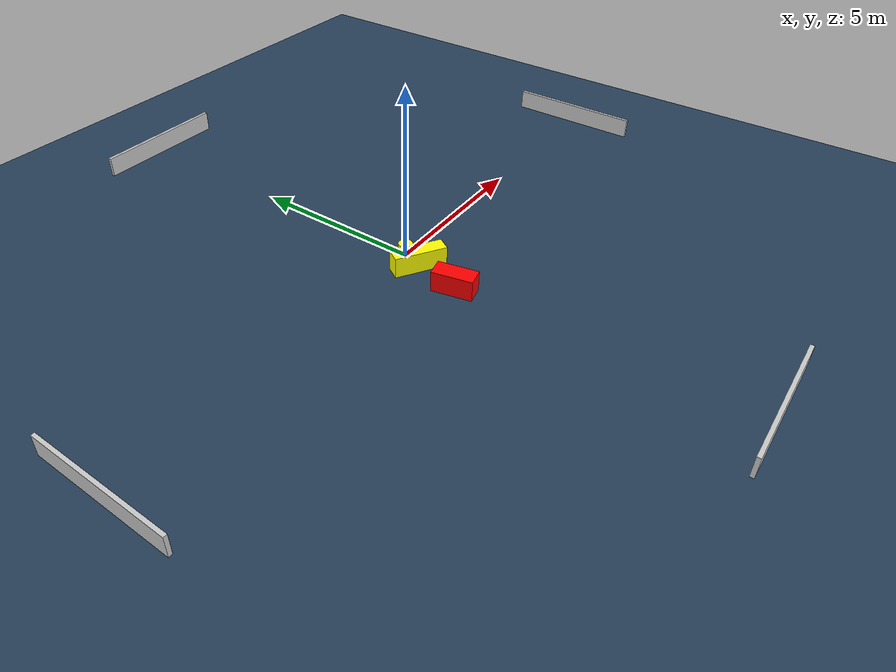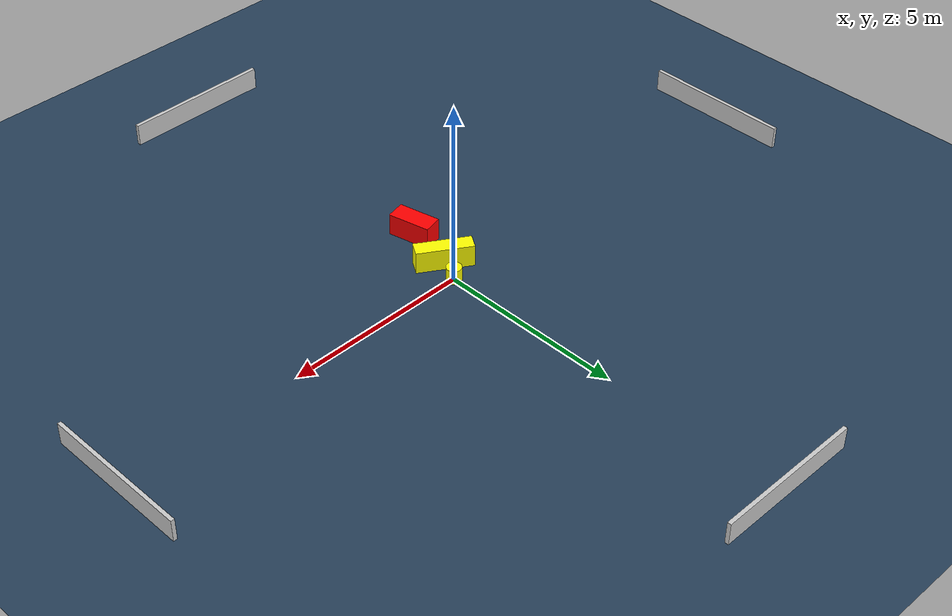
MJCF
<?xml version="1.0" ?>
<mujoco model="generated_environment">
  <option timestep="0.01" integrator="RK4" cone="elliptic"/>
  <default>
    <geom density="1"/>
  </default>
  <asset>
    <texture builtin="gradient" height="3072" name="skybox" rgb1="0.3 0.5 0.7" rgb2="0 0 0" type="skybox" width="512"/>
    <texture builtin="checker" height="300" name="groundplane" rgb1="0.2 0.3 0.4" rgb2="0.1 0.2 0.3" type="2d" width="300"/>
    <material name="groundplane" reflectance="0.2" texrepeat="5 5" texture="groundplane"/>
  </asset>
  <worldbody>
    <light dir="0 0 -1" directional="true" pos="0 0 1.5"/>
    <geom condim="3" friction="0.5 0.005 0.001" material="groundplane" name="floor" pos="0 0 0" size="0 0 0.05" type="plane"/>
    <body name="walls">
      <geom name="wall_1" condim="4" pos="-10.0 0.0 0.3" rgba="0.800000011920929 0.800000011920929 0.800000011920929 1.0" size="0.05 2.0 0.3" type="box"/>
      <geom name="wall_2" condim="4" pos="10.0 0.0 0.3" rgba="0.800000011920929 0.800000011920929 0.800000011920929 1.0" size="0.05 2.0 0.3" type="box"/>
      <geom name="wall_3" condim="4" pos="0.0 -10.0 0.3" rgba="0.800000011920929 0.800000011920929 0.800000011920929 1.0" size="2.0 0.05 0.3" type="box"/>
      <geom name="wall_4" condim="4" pos="0.0 10.0 0.3" rgba="0.800000011920929 0.800000011920929 0.800000011920929 1.0" size="2.0 0.05 0.3" type="box"/>
    </body>
    <body name="robot">
      <joint name="joint_x" type="slide" pos="0 0 0" axis="1 0 0"/>
      <joint name="joint_y" type="slide" pos="0 0 0" axis="0 1 0"/>
      <geom name="robot" type="cylinder" pos="0.0 0.0 0.2" size="0.2 0.2 0.0" mass="5.0" friction="1.0 0.005 0.0001" condim="4" rgba="1.0 1.0 0.0 1.0"/>
    </body>
    <body name="obstacle_1_movable">
      <geom name="obstacle_1_movable" condim="4" pos="-0.244274898233967 -0.6014325696992767 0.3" euler="0 0 147.87069496928382" friction="0.0 0.005 0.001" rgba="1.0 1.0 0.0 1.0" size="0.7390957925488073 0.20623920698245957 0.3" type="box" mass="0.1"/>
      <joint type="free"/>
    </body>
    <body name="obstacle_2_static">
      <geom name="obstacle_2_static" condim="4" pos="-0.4982737095080213 -1.9214317431403745 0.3" euler="0 0 12.584053801183654" friction="0.0 0.005 0.001" rgba="1.0 0.0 0.0 1.0" size="0.2568485007457683 0.566801011491791 0.3" type="box"/>
    </body>
  </worldbody>
  <actuator>
    <motor name="actuator_x" joint="joint_x" gear="1" ctrlrange="-1 1"/>
    <motor name="actuator_y" joint="joint_y" gear="1" ctrlrange="-1 1"/>
  </actuator>
</mujoco>
